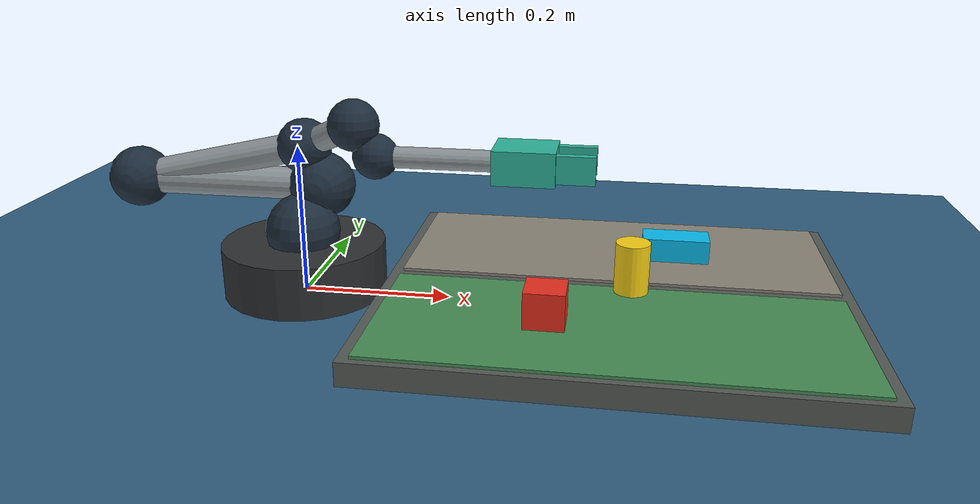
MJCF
<mujoco model="rebotarm_b601_kinematic">
  <compiler angle="radian" coordinate="local" eulerseq="xyz"/>
  <option timestep="0.002" gravity="0 0 -9.81"/>

  <visual>
    <headlight diffuse="0.65 0.65 0.65" ambient="0.25 0.25 0.25" specular="0.2 0.2 0.2"/>
    <rgba haze="0.15 0.18 0.20 1"/>
    <global azimuth="135" elevation="-25"/>
  </visual>

  <asset>
    <material name="base_mat" rgba="0.18 0.19 0.20 1"/>
    <material name="link_mat" rgba="0.55 0.58 0.60 1"/>
    <material name="joint_mat" rgba="0.12 0.18 0.24 1"/>
    <material name="gripper_mat" rgba="0.18 0.72 0.62 1"/>
    <material name="tcp_mat" rgba="1.00 0.34 0.16 1"/>
    <texture name="floor_checker" type="2d" builtin="checker" rgb1="0.26 0.45 0.58" rgb2="0.12 0.30 0.43" width="512" height="512"/>
    <material name="floor_mat" texture="floor_checker" texrepeat="8 8" texuniform="true" reflectance="0.2"/>
    <material name="table_mat" rgba="0.34 0.36 0.34 1"/>
    <material name="pick_zone_mat" rgba="0.28 0.56 0.34 1"/>
    <material name="place_zone_mat" rgba="0.55 0.53 0.48 1"/>
    <material name="object_red_mat" rgba="0.92 0.18 0.12 1"/>
    <material name="object_blue_mat" rgba="0.04 0.75 0.95 1"/>
    <material name="object_yellow_mat" rgba="0.98 0.82 0.08 1"/>
    <material name="target_mat" rgba="1.00 0.55 0.12 0"/>
  </asset>

  <default>
    <joint damping="0.8" armature="0.01" limited="true"/>
    <geom contype="0" conaffinity="0" friction="0.8 0.1 0.1"/>
  </default>

  <worldbody>
    <light name="key_light" pos="0.45 -0.65 1.3" dir="-0.45 0.65 -1"/>
    <camera name="overhead_rgb" mode="fixed" pos="0.42 0 0.86" xyaxes="1 0 0 0 1 0" fovy="50"/>
    <geom name="floor" type="plane" size="1.0 1.0 0.02" material="floor_mat"/>

    <body name="task_table" pos="0.42 0 0.015">
      <geom name="task_table_top" type="box" size="0.30 0.26 0.015" material="table_mat" contype="1" conaffinity="1" friction="1.0 0.01 0.001"/>
      <geom name="task_pick_zone" type="box" pos="0 -0.13 0.017" size="0.285 0.12 0.002" material="pick_zone_mat" contype="0" conaffinity="0"/>
      <geom name="task_place_zone" type="box" pos="0 0.13 0.017" size="0.285 0.12 0.002" material="place_zone_mat" contype="0" conaffinity="0"/>
    </body>

    <body name="red_cube" pos="0.34 -0.13 0.055">
      <freejoint/>
      <geom type="box" size="0.025 0.025 0.025" material="object_red_mat" contype="1" conaffinity="1" mass="0.04" friction="1.1 0.01 0.001"/>
    </body>
    <body name="blue_block" pos="0.50 0.11 0.048">
      <freejoint/>
      <geom type="box" size="0.045 0.022 0.018" material="object_blue_mat" contype="1" conaffinity="1" mass="0.05" friction="1.1 0.01 0.001"/>
    </body>
    <body name="yellow_cylinder" pos="0.44 -0.02 0.065">
      <freejoint/>
      <geom type="cylinder" size="0.022 0.035" material="object_yellow_mat" contype="1" conaffinity="1" mass="0.04" friction="1.1 0.01 0.001"/>
    </body>
    <body name="ik_target" mocap="true" pos="0.34 0 0.20">
      <geom name="ik_target_sphere" type="sphere" size="0.025" material="target_mat" contype="0" conaffinity="0"/>
      <site name="ik_target_site" pos="0 0 0" size="0.035" rgba="1 0.55 0.12 0"/>
    </body>

    <body name="base_link" pos="0 0 0">
      <geom name="base_link_geom" type="cylinder" pos="0 0 0.035" size="0.11 0.035" material="base_mat"/>

      <body name="link1" pos="-0.00008416 0 0.08465">
        <joint name="joint1" type="hinge" axis="0 0 1" range="-2.8 2.8"/>
        <geom name="joint1_geom" type="sphere" size="0.050" material="joint_mat"/>
        <geom name="link1_geom" type="capsule" fromto="0 0 0 0.020084 0.031625 0.05555" size="0.020" material="link_mat"/>

        <body name="link2" pos="0.020084 0.031625 0.05555" euler="-1.5708 0 0">
          <joint name="joint2" type="hinge" axis="0 0 -1" range="-3.14 0"/>
          <geom name="joint2_geom" type="sphere" size="0.045" material="joint_mat"/>
          <geom name="link2_geom" type="capsule" fromto="0 0 0 -0.264 0 0" size="0.022" material="link_mat"/>

          <body name="link3" pos="-0.264 0 0">
            <joint name="joint3" type="hinge" axis="0 0 1" range="-3.14 0"/>
            <geom name="joint3_geom" type="sphere" size="0.042" material="joint_mat"/>
            <geom name="link3_geom" type="capsule" fromto="0 0 0 0.2426 -0.054 -0.001625" size="0.020" material="link_mat"/>

            <body name="link4" pos="0.2426 -0.054 -0.001625">
              <joint name="joint4" type="hinge" axis="0 0 1" range="-1.87 1.57"/>
              <geom name="joint4_geom" type="sphere" size="0.037" material="joint_mat"/>
              <geom name="link4_geom" type="capsule" fromto="0 0 0 0.078308 -0.0375 -0.03" size="0.018" material="link_mat"/>

              <body name="link5" pos="0.078308 -0.0375 -0.03" euler="-1.5708 0 0">
                <joint name="joint5" type="hinge" axis="0 0 1" range="-1.57 1.57"/>
                <geom name="joint5_geom" type="sphere" size="0.034" material="joint_mat"/>
                <geom name="link5_geom" type="capsule" fromto="0 0 0 0.028008 0 0.04" size="0.016" material="link_mat"/>

                <body name="link6" pos="0.028008 0 0.04" euler="0 1.5708 0">
                  <joint name="joint6" type="hinge" axis="0 0 1" range="-3.14 3.14"/>
                  <geom name="joint6_geom" type="sphere" size="0.030" material="joint_mat"/>
                  <geom name="link6_geom" type="capsule" fromto="0 0 0 0 0 0.15539" size="0.014" material="link_mat"/>

                  <body name="end_link" pos="0 0 0.15539" euler="0 -1.5708 3.1415">
                    <geom name="gripper_base_geom" type="box" pos="-0.040 0 0" size="0.040 0.035 0.022" material="gripper_mat"/>
                    <site name="tcp" pos="-0.095 0 0" size="0.008" rgba="1 0.34 0.16 1"/>

                    <body name="finger_left_link" pos="-0.072 0.010 0">
                      <joint name="finger_left" type="slide" axis="0 1 0" range="0 0.0285"/>
                      <geom name="finger_left_geom" type="box" pos="-0.025 0.014 0" size="0.032 0.006 0.018" material="gripper_mat"/>
                    </body>

                    <body name="finger_right_link" pos="-0.072 -0.010 0">
                      <joint name="finger_right" type="slide" axis="0 1 0" range="-0.0285 0"/>
                      <geom name="finger_right_geom" type="box" pos="-0.025 -0.014 0" size="0.032 0.006 0.018" material="gripper_mat"/>
                    </body>
                  </body>
                </body>
              </body>
            </body>
          </body>
        </body>
      </body>
    </body>
  </worldbody>
</mujoco>
